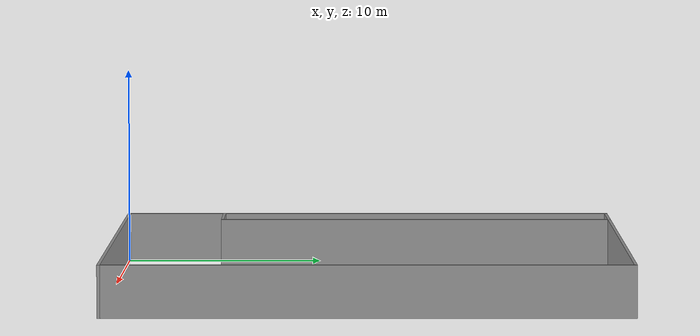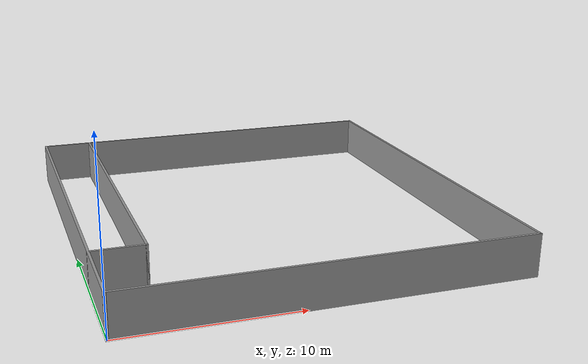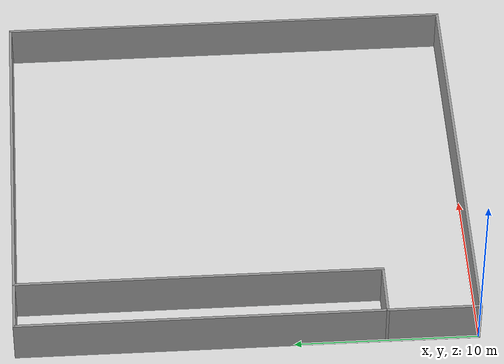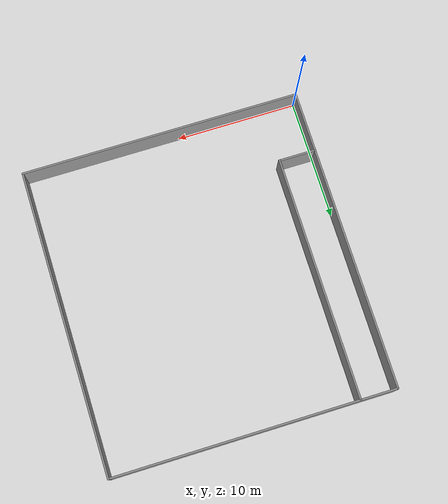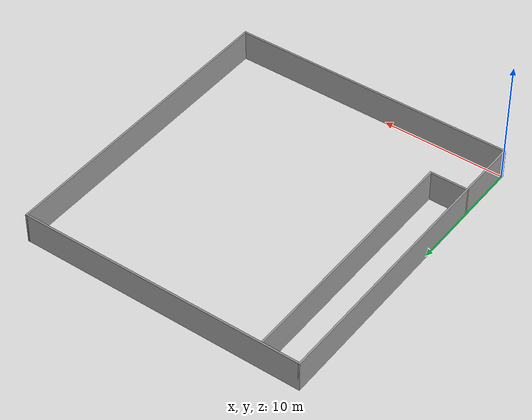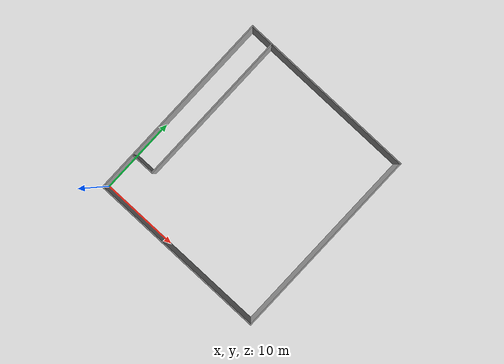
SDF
<?xml version='1.0'?>
<sdf version='1.6'>
  <model name='library'>
    <pose frame=''>11.5 12.5 0 0 -0 0</pose>
    <link name='Wall_10'>
      <collision name='Wall_10_Collision'>
        <geometry>
          <box>
            <size>20.15 0.15 2.5</size>
          </box>
        </geometry>
        <pose frame=''>0 0 1.25 0 -0 0</pose>
      </collision>
      <visual name='Wall_10_Visual'>
        <pose frame=''>0 0 1.25 0 -0 0</pose>
        <geometry>
          <box>
            <size>20.15 0.15 2.5</size>
          </box>
        </geometry>
        <material>
          <script>
            <uri>file://media/materials/scripts/gazebo.material</uri>
            <name>Gazebo/Grey</name>
          </script>
          <ambient>1 1 1 1</ambient>
        </material>
        <meta>
          <layer>0</layer>
        </meta>
      </visual>
      <pose frame=''>-8.5 2.5 0 0 -0 1.5708</pose>
    </link>
    <link name='Wall_2'>
      <collision name='Wall_2_Collision'>
        <geometry>
          <box>
            <size>25.15 0.15 2.5</size>
          </box>
        </geometry>
        <pose frame=''>0 0 1.25 0 -0 0</pose>
      </collision>
      <visual name='Wall_2_Visual'>
        <pose frame=''>0 0 1.25 0 -0 0</pose>
        <geometry>
          <box>
            <size>25.15 0.15 2.5</size>
          </box>
        </geometry>
        <material>
          <script>
            <uri>file://media/materials/scripts/gazebo.material</uri>
            <name>Gazebo/Grey</name>
          </script>
          <ambient>1 1 1 1</ambient>
        </material>
        <meta>
          <layer>0</layer>
        </meta>
      </visual>
      <pose frame=''>-11.5 0 0 0 -0 1.5708</pose>
    </link>
    <link name='Wall_3'>
      <collision name='Wall_3_Collision'>
        <geometry>
          <box>
            <size>23.15 0.15 2.5</size>
          </box>
        </geometry>
        <pose frame=''>0 0 1.25 0 -0 0</pose>
      </collision>
      <visual name='Wall_3_Visual'>
        <pose frame=''>0 0 1.25 0 -0 0</pose>
        <geometry>
          <box>
            <size>23.15 0.15 2.5</size>
          </box>
        </geometry>
        <material>
          <script>
            <uri>file://media/materials/scripts/gazebo.material</uri>
            <name>Gazebo/Grey</name>
          </script>
          <ambient>1 1 1 1</ambient>
        </material>
        <meta>
          <layer>0</layer>
        </meta>
      </visual>
      <pose frame=''>0 12.5 0 0 -0 0</pose>
    </link>
    <link name='Wall_4'>
      <collision name='Wall_4_Collision'>
        <geometry>
          <box>
            <size>25.15 0.15 2.5</size>
          </box>
        </geometry>
        <pose frame=''>0 0 1.25 0 -0 0</pose>
      </collision>
      <visual name='Wall_4_Visual'>
        <pose frame=''>0 0 1.25 0 -0 0</pose>
        <geometry>
          <box>
            <size>25.15 0.15 2.5</size>
          </box>
        </geometry>
        <material>
          <script>
            <uri>file://media/materials/scripts/gazebo.material</uri>
            <name>Gazebo/Grey</name>
          </script>
          <ambient>1 1 1 1</ambient>
        </material>
        <meta>
          <layer>0</layer>
        </meta>
      </visual>
      <pose frame=''>11.5 0 0 0 -0 -1.5708</pose>
    </link>
    <link name='Wall_5'>
      <collision name='Wall_5_Collision'>
        <geometry>
          <box>
            <size>23.15 0.15 2.5</size>
          </box>
        </geometry>
        <pose frame=''>0 0 1.25 0 -0 0</pose>
      </collision>
      <visual name='Wall_5_Visual'>
        <pose frame=''>0 0 1.25 0 -0 0</pose>
        <geometry>
          <box>
            <size>23.15 0.15 2.5</size>
          </box>
        </geometry>
        <material>
          <script>
            <uri>file://media/materials/scripts/gazebo.material</uri>
            <name>Gazebo/Grey</name>
          </script>
          <ambient>1 1 1 1</ambient>
        </material>
        <meta>
          <layer>0</layer>
        </meta>
      </visual>
      <pose frame=''>0 -12.5 0 0 -0 3.14159</pose>
    </link>
    <link name='Wall_9'>
      <collision name='Wall_9_Collision'>
        <geometry>
          <box>
            <size>3.15 0.15 2.5</size>
          </box>
        </geometry>
        <pose frame=''>0 0 1.25 0 -0 0</pose>
      </collision>
      <visual name='Wall_9_Visual'>
        <pose frame=''>0 0 1.25 0 -0 0</pose>
        <geometry>
          <box>
            <size>3.15 0.15 2.5</size>
          </box>
        </geometry>
        <material>
          <script>
            <uri>file://media/materials/scripts/gazebo.material</uri>
            <name>Gazebo/Grey</name>
          </script>
          <ambient>1 1 1 1</ambient>
        </material>
        <meta>
          <layer>0</layer>
        </meta>
      </visual>
      <pose frame=''>-10 -7.5 0 0 -0 0</pose>
    </link>
    <static>1</static>
  </model>
</sdf>
